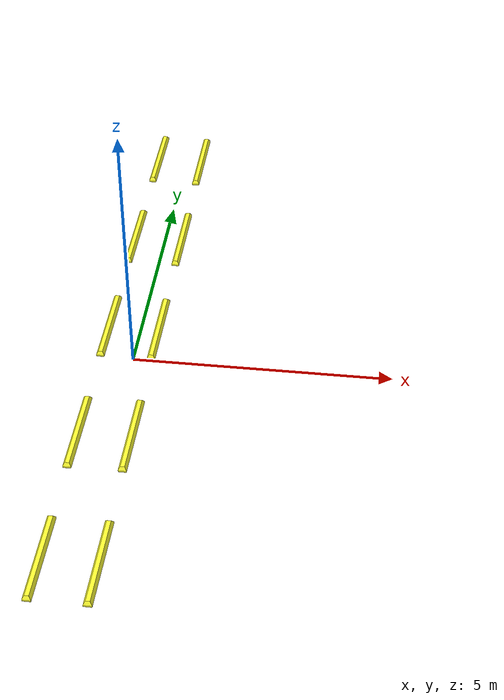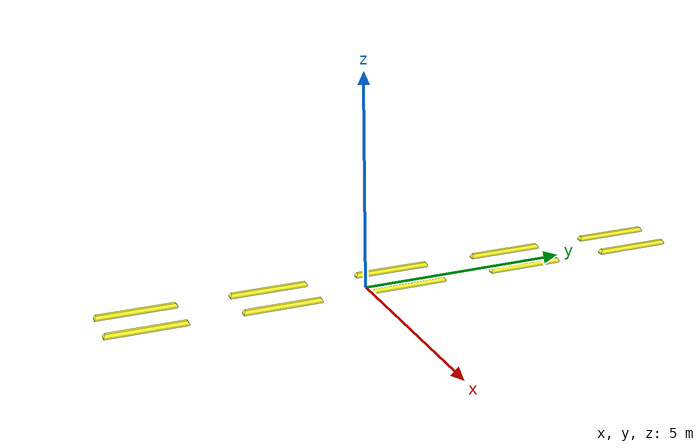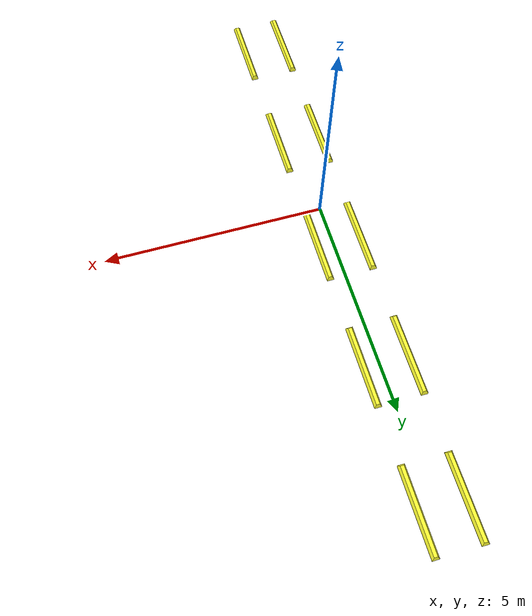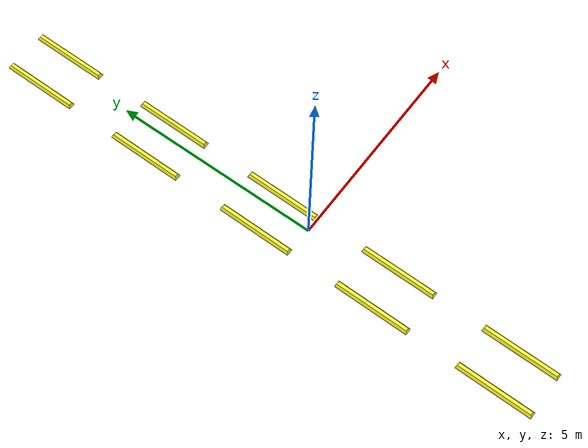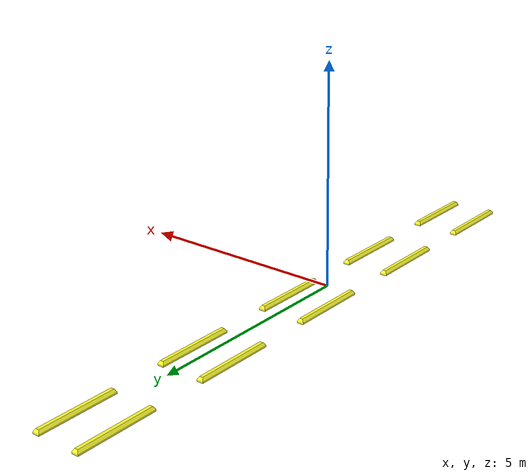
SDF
<?xml version='1.0'?>
<sdf version='1.7'>
  <model name='parking_version_4'>
    <model name='parking_version_3'>
      <model name='drc_practice_yellow_parking_block'>
        <static>1</static>
        <link name='link'>
          <visual name='visual'>
            <geometry>
              <mesh>
                <uri>model://drc_practice_yellow_parking_block/meshes/block.dae</uri>
              </mesh>
            </geometry>
          </visual>
          <collision name='collision'>
            <geometry>
              <mesh>
                <uri>model://drc_practice_yellow_parking_block/meshes/block.dae</uri>
              </mesh>
            </geometry>
            <max_contacts>10</max_contacts>
            <surface>
              <contact>
                <ode/>
              </contact>
              <bounce/>
              <friction>
                <torsional>
                  <ode/>
                </torsional>
                <ode/>
              </friction>
            </surface>
          </collision>
          <self_collide>0</self_collide>
          <enable_wind>0</enable_wind>
          <kinematic>0</kinematic>
        </link>
        <pose>0.413366 6.39123 0 0 -0 0</pose>
      </model>
      <model name='drc_practice_yellow_parking_block_clone_1'>
        <static>1</static>
        <link name='link'>
          <visual name='visual'>
            <geometry>
              <mesh>
                <uri>model://drc_practice_yellow_parking_block/meshes/block.dae</uri>
              </mesh>
            </geometry>
          </visual>
          <collision name='collision'>
            <geometry>
              <mesh>
                <uri>model://drc_practice_yellow_parking_block/meshes/block.dae</uri>
              </mesh>
            </geometry>
            <max_contacts>10</max_contacts>
            <surface>
              <contact>
                <ode/>
              </contact>
              <bounce/>
              <friction>
                <torsional>
                  <ode/>
                </torsional>
                <ode/>
              </friction>
            </surface>
          </collision>
          <self_collide>0</self_collide>
          <enable_wind>0</enable_wind>
          <kinematic>0</kinematic>
        </link>
        <pose>0.405987 3.37653 0 0 -0 0</pose>
      </model>
      <model name='drc_practice_yellow_parking_block_clone_1_clone'>
        <static>1</static>
        <link name='link'>
          <visual name='visual'>
            <geometry>
              <mesh>
                <uri>model://drc_practice_yellow_parking_block/meshes/block.dae</uri>
              </mesh>
            </geometry>
          </visual>
          <collision name='collision'>
            <geometry>
              <mesh>
                <uri>model://drc_practice_yellow_parking_block/meshes/block.dae</uri>
              </mesh>
            </geometry>
            <max_contacts>10</max_contacts>
            <surface>
              <contact>
                <ode/>
              </contact>
              <bounce/>
              <friction>
                <torsional>
                  <ode/>
                </torsional>
                <ode/>
              </friction>
            </surface>
          </collision>
          <self_collide>0</self_collide>
          <enable_wind>0</enable_wind>
          <kinematic>0</kinematic>
        </link>
        <pose>0.410253 0.377816 0 0 -0 0</pose>
      </model>
      <model name='drc_practice_yellow_parking_block_clone_1_clone_clone'>
        <static>1</static>
        <link name='link'>
          <visual name='visual'>
            <geometry>
              <mesh>
                <uri>model://drc_practice_yellow_parking_block/meshes/block.dae</uri>
              </mesh>
            </geometry>
          </visual>
          <collision name='collision'>
            <geometry>
              <mesh>
                <uri>model://drc_practice_yellow_parking_block/meshes/block.dae</uri>
              </mesh>
            </geometry>
            <max_contacts>10</max_contacts>
            <surface>
              <contact>
                <ode/>
              </contact>
              <bounce/>
              <friction>
                <torsional>
                  <ode/>
                </torsional>
                <ode/>
              </friction>
            </surface>
          </collision>
          <self_collide>0</self_collide>
          <enable_wind>0</enable_wind>
          <kinematic>0</kinematic>
        </link>
        <pose>0.410395 -2.63114 0 0 -0 0</pose>
      </model>
      <static>1</static>
      <allow_auto_disable>1</allow_auto_disable>
      <pose>-1.05927 0.530978 0 0 -0 0</pose>
    </model>
    <model name='drc_practice_yellow_parking_block'>
      <static>1</static>
      <link name='link'>
        <visual name='visual'>
          <geometry>
            <mesh>
              <uri>model://drc_practice_yellow_parking_block/meshes/block.dae</uri>
            </mesh>
          </geometry>
        </visual>
        <collision name='collision'>
          <geometry>
            <mesh>
              <uri>model://drc_practice_yellow_parking_block/meshes/block.dae</uri>
            </mesh>
          </geometry>
        </collision>
      </link>
      <pose>0.346026 -2.08831 0 0 -0 0</pose>
    </model>
    <model name='drc_practice_yellow_parking_block_clone'>
      <static>1</static>
      <link name='link'>
        <visual name='visual'>
          <geometry>
            <mesh>
              <uri>model://drc_practice_yellow_parking_block/meshes/block.dae</uri>
            </mesh>
          </geometry>
        </visual>
        <collision name='collision'>
          <geometry>
            <mesh>
              <uri>model://drc_practice_yellow_parking_block/meshes/block.dae</uri>
            </mesh>
          </geometry>
        </collision>
      </link>
      <pose>0.345776 -5.08491 0 0 -0 0</pose>
    </model>
    <model name='drc_practice_yellow_parking_block_clone_clone'>
      <static>1</static>
      <link name='link'>
        <visual name='visual'>
          <geometry>
            <mesh>
              <uri>model://drc_practice_yellow_parking_block/meshes/block.dae</uri>
            </mesh>
          </geometry>
        </visual>
        <collision name='collision'>
          <geometry>
            <mesh>
              <uri>model://drc_practice_yellow_parking_block/meshes/block.dae</uri>
            </mesh>
          </geometry>
        </collision>
      </link>
      <pose>0.342782 0.912728 0 0 -0 0</pose>
    </model>
    <model name='drc_practice_yellow_parking_block_clone_clone_0'>
      <static>1</static>
      <link name='link'>
        <visual name='visual'>
          <geometry>
            <mesh>
              <uri>model://drc_practice_yellow_parking_block/meshes/block.dae</uri>
            </mesh>
          </geometry>
        </visual>
        <collision name='collision'>
          <geometry>
            <mesh>
              <uri>model://drc_practice_yellow_parking_block/meshes/block.dae</uri>
            </mesh>
          </geometry>
        </collision>
      </link>
      <pose>0.344818 3.90903 0 0 -0 0</pose>
    </model>
    <model name='drc_practice_yellow_parking_block_clone_clone_0_clone'>
      <static>1</static>
      <link name='link'>
        <visual name='visual'>
          <geometry>
            <mesh>
              <uri>model://drc_practice_yellow_parking_block/meshes/block.dae</uri>
            </mesh>
          </geometry>
        </visual>
        <collision name='collision'>
          <geometry>
            <mesh>
              <uri>model://drc_practice_yellow_parking_block/meshes/block.dae</uri>
            </mesh>
          </geometry>
        </collision>
      </link>
      <pose>0.336101 6.91064 0 0 -0 0</pose>
    </model>
    <model name='drc_practice_yellow_parking_block_clone_clone_1'>
      <static>1</static>
      <link name='link'>
        <visual name='visual'>
          <geometry>
            <mesh>
              <uri>model://drc_practice_yellow_parking_block/meshes/block.dae</uri>
            </mesh>
          </geometry>
        </visual>
        <collision name='collision'>
          <geometry>
            <mesh>
              <uri>model://drc_practice_yellow_parking_block/meshes/block.dae</uri>
            </mesh>
          </geometry>
        </collision>
      </link>
      <pose>-0.656234 -5.09016 0 0 -0 0</pose>
    </model>
    <static>1</static>
    <allow_auto_disable>1</allow_auto_disable>
  </model>
</sdf>
